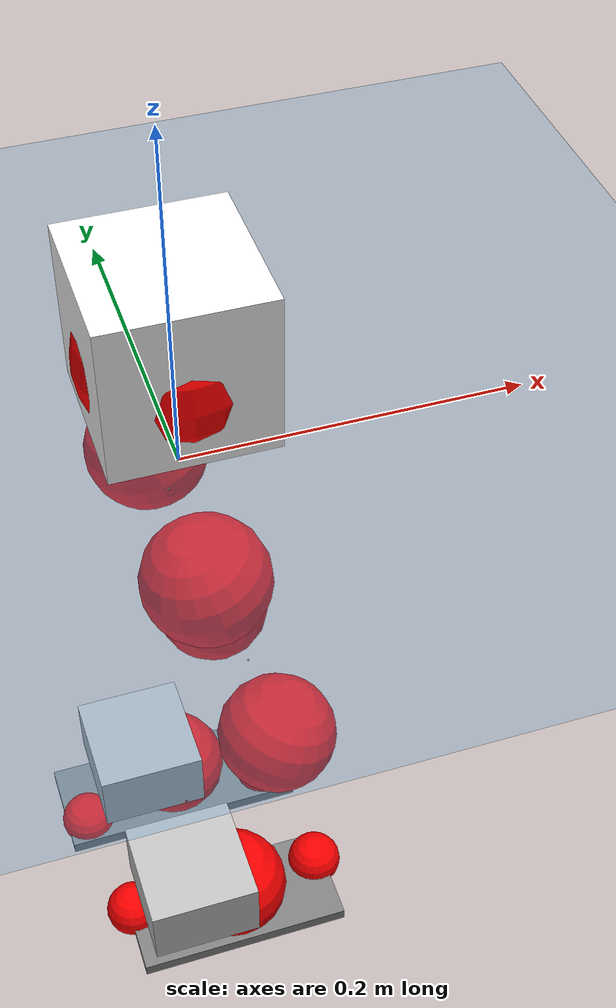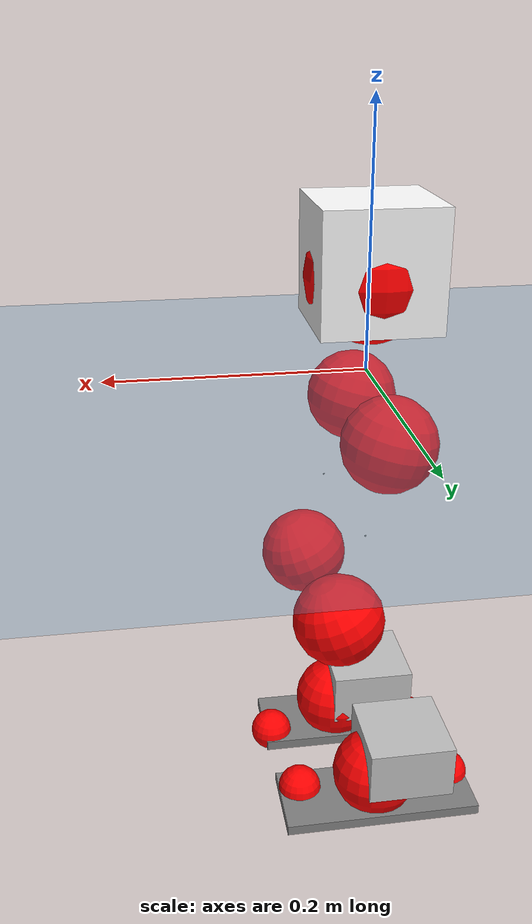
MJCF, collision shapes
<mujoco model="pi_12dof_release_v1">
  <compiler angle="radian" assetdir="assets" balanceinertia="true" inertiafromgeom="false"/>

  <option timestep="0.005" density="1.2" viscosity="2e-05"/>

  <size nkey="1"/>

  <visual>
    <quality shadowsize="8192"/>
    <map shadowclip="0.5"/>
  </visual>

  <default>
    <default class="/">
      <joint armature="0.01" damping="0.01" frictionloss="0.01"/>
      <geom contype="0" conaffinity="0" group="1" solref="-1000 -80"/>
      <site size="0.01 0.005 0.005" group="5"/>
      <general forcelimited="true" biastype="affine" gainprm="20" biasprm="0 -20 -0.5"/>
      <default class="foot">
        <geom size="0.0845 0.036 0.005" type="box" condim="6" group="4" priority="1" friction="0.9 0.2 0.2" solimp="0.015 1 0.005"/>
      </default>
      <default class="reward_collision_sphere">
        <geom group="5" rgba="1 0 0 1"/>
      </default>
    </default>
  </default>

  <asset>
    <texture type="skybox" colorspace="auto" name="//unnamed_texture_0" builtin="gradient" rgb1="0.95 0.95 0.95" rgb2="0.95 0.95 0.95" width="100" height="600"/>
    <texture type="2d" colorspace="auto" name="texplane" builtin="checker" rgb1="0.345 0.575 0.748" rgb2="0.345 0.575 0.748" markrgb="1 1 1" width="512" height="512"/>
    <material name="MatPlane" class="/" texture="texplane" texuniform="true" texrepeat="2 2" specular="0.9"/>
    <mesh name="baselink_1" class="/" file="baselink_1.STL"/>
    <mesh name="r_hip_pitch_link" class="/" file="r_hip_pitch_link.STL"/>
    <mesh name="r_hip_roll_link" class="/" file="r_hip_roll_link.STL"/>
    <mesh name="r_thigh_link" class="/" file="r_thigh_link.STL"/>
    <mesh name="r_calf_link" class="/" file="r_calf_link.STL"/>
    <mesh name="r_ankle_pitch_link" class="/" file="r_ankle_pitch_link.STL"/>
    <mesh name="r_ankle_roll_link" class="/" file="r_ankle_roll_link.STL"/>
    <mesh name="l_hip_pitch_link" class="/" file="l_hip_pitch_link.STL"/>
    <mesh name="l_hip_roll_link" class="/" file="l_hip_roll_link.STL"/>
    <mesh name="l_thigh_link" class="/" file="l_thigh_link.STL"/>
    <mesh name="l_calf_link" class="/" file="l_calf_link.STL"/>
    <mesh name="l_ankle_pitch_link" class="/" file="l_ankle_pitch_link.STL"/>
    <mesh name="l_ankle_roll_link" class="/" file="l_ankle_roll_link.STL"/>
  </asset>

  <worldbody>
    <geom name="floor" class="/" size="100 100 0.125" type="plane" group="0" material="MatPlane"/>
    <light name="toplight_shadow" class="/" pos="0 0 5" dir="0.0990148 0.0990148 -0.990148" type="directional" ambient="0.04 0.04 0.04" diffuse="0.55 0.55 0.55" specular="0.12 0.12 0.12"/>
    <light name="toplight_fill" class="/" pos="0 0 5" dir="0.0990148 0.0990148 -0.990148" type="directional" castshadow="false" ambient="0.04 0.04 0.04" diffuse="0.3 0.3 0.3" specular="0.08 0.08 0.08"/>
    <body name="trunk" pos="-0.00104831 -9.4871e-06 -0.00282746" quat="1 0.000317839 0.00026775 -0.000253085">
      <inertial pos="-0.000358171 -0.00257572 0.0455577" quat="0.689756 0.0098756 0.00975479 0.723909" mass="1.67735" diaginertia="0.0091699 0.00153661 0.00612137"/>
      <joint name="//unnamed_joint_0" type="free"/>
      <geom name="//unnamed_geom_1" class="/" type="mesh" density="0" rgba="1 1 1 1" mesh="baselink_1"/>
      <geom name="//unnamed_geom_2" class="/" size="0.045777 0.045777 0.045777" pos="0 0 0.0857405" type="box" rgba="1 1 1 1"/>
      <geom name="//unnamed_geom_3" class="reward_collision_sphere" size="0.0503547" pos="0 0 0.075023"/>
      <site name="imu" class="/" pos="-0.00587186 0.0037988 0.011049" size="0.00915539"/>
      <camera name="track" class="/" pos="0 -1.39713 0" quat="0.707107 0.707107 0 0" mode="trackcom"/>
      <camera name="ego_camera" class="/" pos="0.073222 0 0.192916" quat="-0.5 -0.5 0.5 0.5"/>
      <body name="r_hip_pitch_link" pos="0.000348681 -0.0164489 -0.0352113" quat="0.992133 -0.000977539 -0.125179 -0.000729357">
        <inertial pos="0.00306032 -0.0421617 0.000772313" quat="-0.00870015 0.711835 -0.0235981 0.701896" mass="0.279103" diaginertia="9.48525e-05 1.63831e-05 0.000120396"/>
        <joint name="r_hip_pitch_joint" class="/" pos="0 0 0" axis="0.00345681 -0.999988 -0.00354306" stiffness="0.00263159" range="-1.75028 1.21387" armature="0.00813057" damping="0.00577015" frictionloss="0.00844652"/>
        <geom name="//unnamed_geom_4" class="/" type="mesh" density="0" rgba="0.75294 0.75294 0.75294 1" mesh="r_hip_pitch_link"/>
        <geom name="//unnamed_geom_5" class="/" size="0.00045777 0.00045777 0.00045777" type="box" rgba="0.75294 0.75294 0.75294 1"/>
        <body name="r_hip_roll_link" pos="-0.00120315 -0.0366797 -0.00171172" quat="1 7.43385e-05 0.000148518 0.000262531">
          <inertial pos="0.0012718 -0.000108036 -0.0634104" quat="0.708575 -0.076853 -0.0825536 0.696563" mass="0.304839" diaginertia="0.000285569 4.56974e-05 0.000180205"/>
          <joint name="r_hip_roll_joint" class="/" pos="0 0 0" axis="-0.999986 -7.9354e-05 0.0051975" range="-0.16238 0.528348" armature="0.00807676" damping="0.0102688" frictionloss="0.010426"/>
          <geom name="//unnamed_geom_6" class="/" type="mesh" density="0" rgba="0.75294 0.75294 0.75294 1" mesh="r_hip_roll_link"/>
          <geom name="//unnamed_geom_7" class="/" size="0.00045777 0.00045777 0.00045777" type="box" rgba="0.75294 0.75294 0.75294 1"/>
          <geom name="//unnamed_geom_8" class="reward_collision_sphere" size="0.0366216"/>
          <body name="r_thigh_link" pos="0.00280434 -0.00227554 -0.0755286" quat="0.999999 -0.00055339 -0.000937557 0.000364345">
            <inertial pos="0.000274227 0.00026029 -0.0515531" quat="0.738167 0.674611 0.000409139 -0.00283305" mass="0.0843135" diaginertia="0.000107412 1.5686e-05 7.90279e-05"/>
            <joint name="r_thigh_joint" class="/" pos="0 0 0" axis="0.0157132 0.00504473 -0.999864" stiffness="0.00908951" range="-0.269618 0.618663" armature="0.00944938" damping="0.00492238" frictionloss="0.00892025"/>
            <geom name="//unnamed_geom_9" class="/" type="mesh" density="0" rgba="0.75294 0.75294 0.75294 1" mesh="r_thigh_link"/>
            <geom name="//unnamed_geom_10" class="/" size="0.00045777 0.00045777 0.00045777" type="box" rgba="0.75294 0.75294 0.75294 1"/>
            <body name="r_calf_link" pos="-0.00248146 -0.0014336 -0.0759902" quat="0.947788 -0.00031891 0.318901 0.000188802">
              <inertial pos="0.00188916 -0.000277755 -0.0755669" quat="0.999979 -0.00300309 -0.000164261 0.00567324" mass="0.642144" diaginertia="0.00314272 0.000623269 0.000254507"/>
              <joint name="r_calf_joint" class="/" pos="0 0 0" axis="0.0106813 -0.999942 0.00155084" stiffness="0.000723505" range="-1.62727 0.701804" armature="0.00784127" damping="0.0217673" frictionloss="0.0080152"/>
              <geom name="//unnamed_geom_11" class="/" type="mesh" density="0" rgba="0.75294 0.75294 0.75294 1" mesh="r_calf_link"/>
              <geom name="//unnamed_geom_12" class="/" size="0.00045777 0.00045777 0.00045777" type="box" rgba="0.75294 0.75294 0.75294 1"/>
              <geom name="//unnamed_geom_13" class="reward_collision_sphere" size="0.0366216"/>
              <body name="r_ankle_pitch_link" pos="-0.00110754 0.00124278 -0.152483" quat="0.980081 -3.00905e-05 -0.198599 -0.000124974">
                <inertial pos="0.00484127 0.00194707 0.000863291" quat="0.00232973 0.700092 -0.00846026 0.713999" mass="0.127597" diaginertia="0.000260193 3.6907e-05 0.000168534"/>
                <joint name="r_ankle_pitch_joint" class="/" pos="0 0 0" axis="0.00333373 -0.999994 -0.000332799" range="-1.30882 0.498464" armature="0.00920063" damping="0" frictionloss="0.00921966"/>
                <geom name="//unnamed_geom_14" class="/" type="mesh" density="0" rgba="0.75294 0.75294 0.75294 1" mesh="r_ankle_pitch_link"/>
                <geom name="//unnamed_geom_15" class="/" size="0.035706 0.0366216 0.0228885" type="box" rgba="0.75294 0.75294 0.75294 1"/>
                <body name="r_ankle_roll_link" pos="0.0770017 0.0010216 0.00166025" quat="1 -0.000420561 -7.38017e-05 -9.20769e-05">
                  <inertial pos="-0.0238359 0.00026619 -0.0136357" quat="0.56732 0.43252 0.436888 0.547909" mass="0.402428" diaginertia="0.000990106 0.000166517 0.000397392"/>
                  <joint name="r_ankle_roll_joint" class="/" pos="0 0 0" axis="-0.999984 -0.00559388 -0.000453506" range="-0.20892 0.192613" armature="0.00990914" damping="0" frictionloss="0.0102287"/>
                  <geom name="//unnamed_geom_16" class="/" type="mesh" density="0" rgba="0.75294 0.75294 0.75294 1" mesh="r_ankle_roll_link"/>
                  <geom name="//unnamed_geom_17" class="/" type="mesh" rgba="0.75294 0.75294 0.75294 1" mesh="r_ankle_roll_link"/>
                  <geom name="right_foot" class="foot" size="0.070689 0.0333065 0.00437134" pos="-0.049791 0 -0.0471573"/>
                  <geom name="//unnamed_geom_19" class="reward_collision_sphere" size="0.0366216" pos="-0.0488147 0 -0.0214351"/>
                  <geom name="//unnamed_geom_20" class="reward_collision_sphere" size="0.0183108" pos="0.0146444 0.0139713 -0.0428703"/>
                  <geom name="//unnamed_geom_21" class="reward_collision_sphere" size="0.0183108" pos="-0.117155 0.0139713 -0.0428703"/>
                  <site name="right_foot" class="foot" pos="-0.049791 0 -0.0471573" size="0.00915539"/>
                </body>
              </body>
            </body>
          </body>
        </body>
      </body>
      <body name="l_hip_pitch_link" pos="-0.00177025 0.0184645 -0.0353214" quat="0.992211 -0.000326576 -0.124564 0.000208625">
        <inertial pos="0.00341583 0.0395924 -0.000723157" quat="-0.030238 0.702219 0.0397823 0.710206" mass="0.300058" diaginertia="0.000108296 1.72657e-05 0.000134338"/>
        <joint name="l_hip_pitch_joint" class="/" pos="0 0 0" axis="0.0111513 0.99991 -0.00740177" range="-1.29011 1.74872" armature="0.00992133" damping="0.00762322" frictionloss="0.00929052"/>
        <geom name="//unnamed_geom_22" class="/" type="mesh" density="0" rgba="0.75294 0.75294 0.75294 1" mesh="l_hip_pitch_link"/>
        <geom name="//unnamed_geom_23" class="/" size="0.00045777 0.00045777 0.00045777" type="box" rgba="0.75294 0.75294 0.75294 1"/>
        <body name="l_hip_roll_link" pos="-0.00312379 0.0387013 -0.00016573" quat="1 0.000108417 -4.88059e-05 -1.14381e-05">
          <inertial pos="-0.000926361 0.00252165 -0.0652313" quat="0.699147 -0.070863 -0.0753 0.707462" mass="0.298134" diaginertia="0.000297254 4.46606e-05 0.000184657"/>
          <joint name="l_hip_roll_joint" class="/" pos="0 0 0" axis="-0.999972 -0.000234224 -0.00754543" range="-0.474989 0.172227" armature="0.00891507" damping="0" frictionloss="0.0081452"/>
          <geom name="//unnamed_geom_24" class="/" type="mesh" density="0" rgba="0.75294 0.75294 0.75294 1" mesh="l_hip_roll_link"/>
          <geom name="//unnamed_geom_25" class="/" size="0.00045777 0.00045777 0.00045777" type="box" rgba="0.75294 0.75294 0.75294 1"/>
          <geom name="//unnamed_geom_26" class="reward_collision_sphere" size="0.0366216"/>
          <body name="l_thigh_link" pos="-0.00322881 0.000798124 -0.075442" quat="1 -0.000842757 -0.000231333 -0.000153403">
            <inertial pos="0.00020452 -0.00100112 -0.0497011" quat="0.673228 0.739433 -0.00108733 0.00121015" mass="0.0869551" diaginertia="0.000110201 1.5673e-05 8.12872e-05"/>
            <joint name="l_thigh_joint" class="/" pos="0 0 0" axis="-0.00421914 -0.00790745 -0.99996" stiffness="0.00301732" range="-0.658293 0.353143" armature="0.0102975" damping="0" frictionloss="0.0104503"/>
            <geom name="//unnamed_geom_27" class="/" type="mesh" density="0" rgba="0.75294 0.75294 0.75294 1" mesh="l_thigh_link"/>
            <geom name="//unnamed_geom_28" class="/" size="0.00045777 0.00045777 0.00045777" type="box" rgba="0.75294 0.75294 0.75294 1"/>
            <body name="l_calf_link" pos="-0.000645347 -0.00172241 -0.0770811" quat="0.947894 0.000294482 0.318585 0.00105993">
              <inertial pos="-0.00153655 0.00189646 -0.0725903" quat="0.999987 0.00268144 -0.00351079 0.00253759" mass="0.605825" diaginertia="0.00304426 0.000563092 0.000234616"/>
              <joint name="l_calf_joint" class="/" pos="0 0 0" axis="-0.00792955 0.999965 0.00277278" range="-0.616061 1.63939" armature="0.00817955" damping="0.00518192" frictionloss="0.00816865"/>
              <geom name="//unnamed_geom_29" class="/" type="mesh" density="0" rgba="0.75294 0.75294 0.75294 1" mesh="l_calf_link"/>
              <geom name="//unnamed_geom_30" class="/" size="0.00045777 0.00045777 0.00045777" type="box" rgba="0.75294 0.75294 0.75294 1"/>
              <geom name="//unnamed_geom_31" class="reward_collision_sphere" size="0.0366216"/>
              <body name="l_ankle_pitch_link" pos="-0.00102293 -0.00169386 -0.148536" quat="0.98011 -9.44817e-05 -0.198455 0.000510605">
                <inertial pos="0.00761664 -0.00124957 -0.000514411" quat="-0.00277789 0.706664 0.00245034 0.707539" mass="0.131197" diaginertia="0.000261935 3.62519e-05 0.000167924"/>
                <joint name="l_ankle_pitch_joint" class="/" pos="0 0 0" axis="-0.0107882 0.999907 0.00830979" range="-0.499186 1.31898" armature="0.00928124" damping="0" frictionloss="0.00941834"/>
                <geom name="//unnamed_geom_32" class="/" type="mesh" density="0" rgba="0.75294 0.75294 0.75294 1" mesh="l_ankle_pitch_link"/>
                <geom name="//unnamed_geom_33" class="/" size="0.035706 0.0366216 0.0228885" type="box" rgba="0.75294 0.75294 0.75294 1"/>
                <body name="l_ankle_roll_link" pos="0.0710125 -0.000113603 0.000335847" quat="0.999999 0.000698418 -0.000342413 0.000916636">
                  <inertial pos="-0.0261219 -0.000250343 -0.0160819" quat="0.563428 0.433659 0.439396 0.549017" mass="0.388291" diaginertia="0.000957086 0.000174663 0.0003922"/>
                  <joint name="l_ankle_roll_joint" class="/" pos="0 0 0" axis="-0.999984 0.00178883 -0.00532109" range="-0.155906 0.150083" armature="0.00857183" damping="0.00536025" frictionloss="0.00846586"/>
                  <geom name="//unnamed_geom_34" class="/" type="mesh" density="0" rgba="0.75294 0.75294 0.75294 1" mesh="l_ankle_roll_link"/>
                  <geom name="//unnamed_geom_35" class="/" type="mesh" rgba="0.75294 0.75294 0.75294 1" mesh="l_ankle_roll_link"/>
                  <geom name="left_foot" class="foot" size="0.0824643 0.0334489 0.00424245" pos="-0.049791 0 -0.0471573"/>
                  <geom name="//unnamed_geom_37" class="reward_collision_sphere" size="0.0366216" pos="-0.0488147 0 -0.0214351"/>
                  <geom name="//unnamed_geom_38" class="reward_collision_sphere" size="0.0183108" pos="0.0146444 -0.0139713 -0.0428703"/>
                  <geom name="//unnamed_geom_39" class="reward_collision_sphere" size="0.0183108" pos="-0.117155 -0.0139713 -0.0428703"/>
                  <site name="left_foot" class="foot" pos="-0.049791 0 -0.0471573" size="0.00915539"/>
                </body>
              </body>
            </body>
          </body>
        </body>
      </body>
    </body>
  </worldbody>

  <contact>
    <pair class="/" geom1="floor" geom2="right_foot" name="//unnamed_contact_1"/>
    <pair class="/" geom1="floor" geom2="left_foot" name="//unnamed_contact_0"/>
  </contact>

  <actuator>
    <general name="r_hip_pitch_joint" class="/" joint="r_hip_pitch_joint" forcerange="-20.458 20.458" gainprm="18.6341" biasprm="0 -18.6341 -0.481846"/>
    <general name="r_hip_roll_joint" class="/" joint="r_hip_roll_joint" forcerange="-17.4625 17.4625" gainprm="18.6341" biasprm="0 -18.6341 -0.481846"/>
    <general name="r_thigh_joint" class="/" joint="r_thigh_joint" forcerange="-21.2417 21.2417" gainprm="18.6341" biasprm="0 -18.6341 -0.481846"/>
    <general name="r_calf_joint" class="/" joint="r_calf_joint" forcerange="-19.3319 19.3319" gainprm="18.6341" biasprm="0 -18.6341 -0.481846"/>
    <general name="r_ankle_pitch_joint" class="/" joint="r_ankle_pitch_joint" forcerange="-17.3886 17.3886" gainprm="18.6341" biasprm="0 -18.6341 -0.481846"/>
    <general name="r_ankle_roll_joint" class="/" joint="r_ankle_roll_joint" forcerange="-19.2573 19.2573" gainprm="18.6341" biasprm="0 -18.6341 -0.481846"/>
    <general name="l_hip_pitch_joint" class="/" joint="l_hip_pitch_joint" forcerange="-19.656 19.656" gainprm="18.6341" biasprm="0 -18.6341 -0.481846"/>
    <general name="l_hip_roll_joint" class="/" joint="l_hip_roll_joint" forcerange="-17.2874 17.2874" gainprm="18.6341" biasprm="0 -18.6341 -0.481846"/>
    <general name="l_thigh_joint" class="/" joint="l_thigh_joint" forcerange="-18.8357 18.8357" gainprm="18.6341" biasprm="0 -18.6341 -0.481846"/>
    <general name="l_calf_joint" class="/" joint="l_calf_joint" forcerange="-17.1926 17.1926" gainprm="18.6341" biasprm="0 -18.6341 -0.481846"/>
    <general name="l_ankle_pitch_joint" class="/" joint="l_ankle_pitch_joint" forcerange="-20.8655 20.8655" gainprm="18.6341" biasprm="0 -18.6341 -0.481846"/>
    <general name="l_ankle_roll_joint" class="/" joint="l_ankle_roll_joint" forcerange="-17.5822 17.5822" gainprm="18.6341" biasprm="0 -18.6341 -0.481846"/>
  </actuator>

  <sensor>
    <gyro site="imu" name="imu_angular_velocity"/>
    <velocimeter site="imu" name="imu_linear_velocity"/>
    <framelinvel objtype="site" objname="left_foot" name="left_foot_global_linear_velocity"/>
    <framelinvel objtype="site" objname="right_foot" name="right_foot_global_linear_velocity"/>
  </sensor>

  <keyframe>
    <key name="home" qpos="0 0 0.291 1 0 0 0 0.4 0 0 -0.8 0.4 0 -0.4 0 0 0.8 -0.4 0"/>
  </keyframe>
</mujoco>
